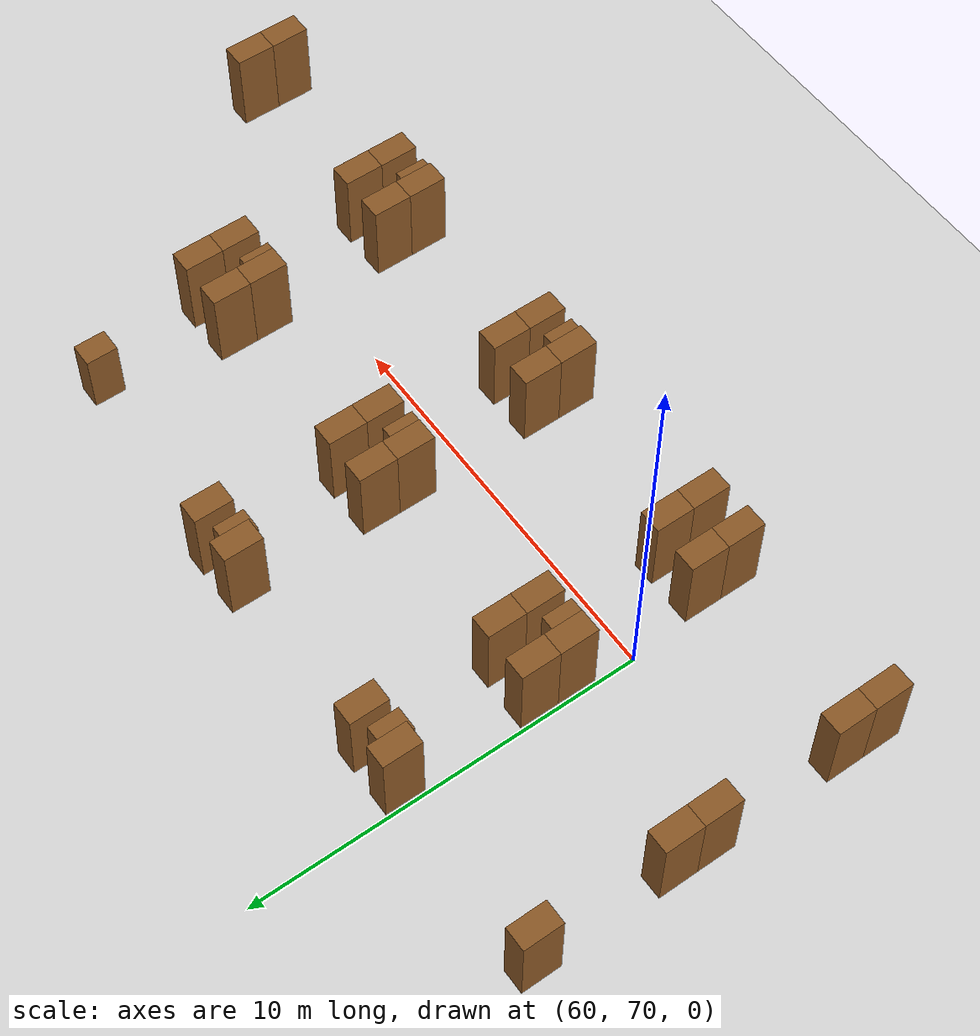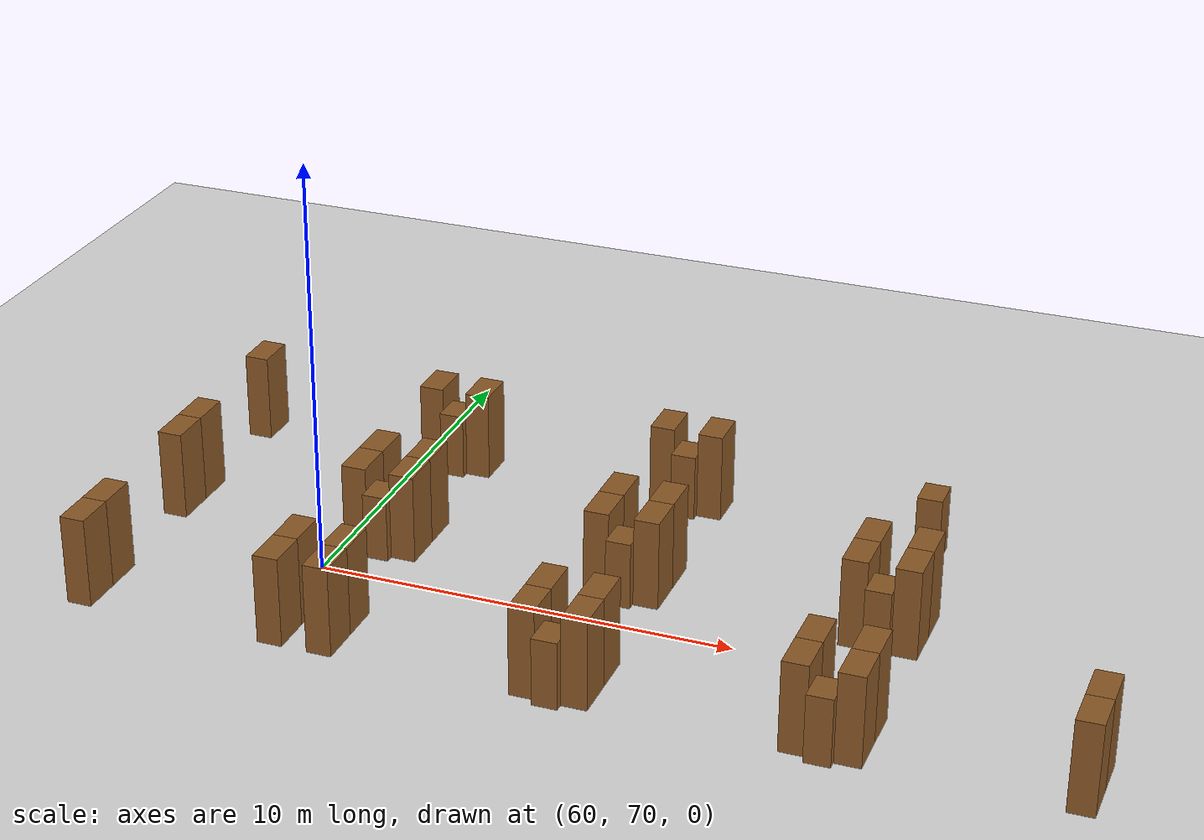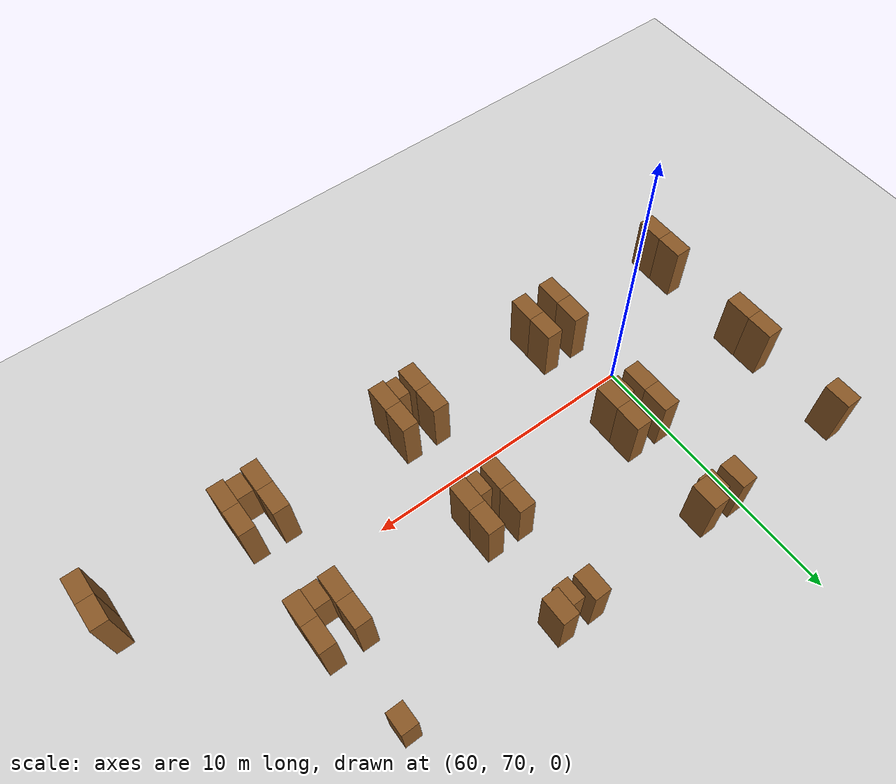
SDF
<sdf version="1.9">
 <world name="realistic_warehouse_150x200m">
  <model name="ground_plane">
   <static>true</static>
   <pose>68.5 102.0 0 0 0 0</pose>
   <link name="ground_link">
    <visual name="ground_visual">
     <geometry><box><size>127.0 194.0 0.01</size></box></geometry>
     <material><ambient>0.85 0.85 0.85 1.0</ambient><diffuse>0.85 0.85 0.85 1.0</diffuse></material>
    </visual>
    <collision name="ground_visual_collision">
     <geometry><box><size>127.0 194.0 0.01</size></box></geometry>
    </collision>
    <collision name="ground_collision">
     <geometry><plane><normal>0 0 1</normal><size>127.0 194.0</size></plane></geometry>
    </collision>
   </link>
  </model>
  <model name="rack_Zone_H_A0_S1_1230">
   <static>true</static>
   <pose>55.6 67.0 1.1 0 0 0</pose>
   <link name="rack_Zone_H_A0_S1_1230_link">
    <visual name="rack_Zone_H_A0_S1_1230_vis">
     <geometry><box><size>0.6 1.0 2.2</size></box></geometry>
     <material><ambient>0.55 0.35 0.15 1.0</ambient><diffuse>0.55 0.35 0.15 1.0</diffuse></material>
    </visual>
    <collision name="rack_Zone_H_A0_S1_1230_vis_collision">
     <geometry><box><size>0.6 1.0 2.2</size></box></geometry>
    </collision>
   </link>
  </model>
  <model name="rack_Zone_H_A0_S1_1231">
   <static>true</static>
   <pose>55.6 68.0 1.1 0 0 0</pose>
   <link name="rack_Zone_H_A0_S1_1231_link">
    <visual name="rack_Zone_H_A0_S1_1231_vis">
     <geometry><box><size>0.6 1.0 2.2</size></box></geometry>
     <material><ambient>0.55 0.35 0.15 1.0</ambient><diffuse>0.55 0.35 0.15 1.0</diffuse></material>
    </visual>
    <collision name="rack_Zone_H_A0_S1_1231_vis_collision">
     <geometry><box><size>0.6 1.0 2.2</size></box></geometry>
    </collision>
   </link>
  </model>
  <model name="rack_Zone_H_A0_S2_1235">
   <static>true</static>
   <pose>55.6 71.5 1.1 0 0 0</pose>
   <link name="rack_Zone_H_A0_S2_1235_link">
    <visual name="rack_Zone_H_A0_S2_1235_vis">
     <geometry><box><size>0.6 1.0 2.2</size></box></geometry>
     <material><ambient>0.55 0.35 0.15 1.0</ambient><diffuse>0.55 0.35 0.15 1.0</diffuse></material>
    </visual>
    <collision name="rack_Zone_H_A0_S2_1235_vis_collision">
     <geometry><box><size>0.6 1.0 2.2</size></box></geometry>
    </collision>
   </link>
  </model>
  <model name="rack_Zone_H_A0_S2_1236">
   <static>true</static>
   <pose>55.6 72.5 1.1 0 0 0</pose>
   <link name="rack_Zone_H_A0_S2_1236_link">
    <visual name="rack_Zone_H_A0_S2_1236_vis">
     <geometry><box><size>0.6 1.0 2.2</size></box></geometry>
     <material><ambient>0.55 0.35 0.15 1.0</ambient><diffuse>0.55 0.35 0.15 1.0</diffuse></material>
    </visual>
    <collision name="rack_Zone_H_A0_S2_1236_vis_collision">
     <geometry><box><size>0.6 1.0 2.2</size></box></geometry>
    </collision>
   </link>
  </model>
  <model name="rack_Zone_H_A0_S3_1240">
   <static>true</static>
   <pose>55.6 76.0 1.1 0 0 0</pose>
   <link name="rack_Zone_H_A0_S3_1240_link">
    <visual name="rack_Zone_H_A0_S3_1240_vis">
     <geometry><box><size>0.6 1.0 2.2</size></box></geometry>
     <material><ambient>0.55 0.35 0.15 1.0</ambient><diffuse>0.55 0.35 0.15 1.0</diffuse></material>
    </visual>
    <collision name="rack_Zone_H_A0_S3_1240_vis_collision">
     <geometry><box><size>0.6 1.0 2.2</size></box></geometry>
    </collision>
   </link>
  </model>
  <model name="rack_Zone_H_A1_S1_1272">
   <static>true</static>
   <pose>60.4 67.0 1.1 0 0 0</pose>
   <link name="rack_Zone_H_A1_S1_1272_link">
    <visual name="rack_Zone_H_A1_S1_1272_vis">
     <geometry><box><size>0.6 1.0 2.2</size></box></geometry>
     <material><ambient>0.55 0.35 0.15 1.0</ambient><diffuse>0.55 0.35 0.15 1.0</diffuse></material>
    </visual>
    <collision name="rack_Zone_H_A1_S1_1272_vis_collision">
     <geometry><box><size>0.6 1.0 2.2</size></box></geometry>
    </collision>
   </link>
  </model>
  <model name="rack_Zone_H_A1_S1_1273">
   <static>true</static>
   <pose>60.4 68.0 1.1 0 0 0</pose>
   <link name="rack_Zone_H_A1_S1_1273_link">
    <visual name="rack_Zone_H_A1_S1_1273_vis">
     <geometry><box><size>0.6 1.0 2.2</size></box></geometry>
     <material><ambient>0.55 0.35 0.15 1.0</ambient><diffuse>0.55 0.35 0.15 1.0</diffuse></material>
    </visual>
    <collision name="rack_Zone_H_A1_S1_1273_vis_collision">
     <geometry><box><size>0.6 1.0 2.2</size></box></geometry>
    </collision>
   </link>
  </model>
  <model name="rack_Zone_H_A1_S1_1274">
   <static>true</static>
   <pose>61.6 67.0 1.1 0 0 0</pose>
   <link name="rack_Zone_H_A1_S1_1274_link">
    <visual name="rack_Zone_H_A1_S1_1274_vis">
     <geometry><box><size>0.6 1.0 2.2</size></box></geometry>
     <material><ambient>0.55 0.35 0.15 1.0</ambient><diffuse>0.55 0.35 0.15 1.0</diffuse></material>
    </visual>
    <collision name="rack_Zone_H_A1_S1_1274_vis_collision">
     <geometry><box><size>0.6 1.0 2.2</size></box></geometry>
    </collision>
   </link>
  </model>
  <model name="rack_Zone_H_A1_S1_1275">
   <static>true</static>
   <pose>61.6 68.0 1.1 0 0 0</pose>
   <link name="rack_Zone_H_A1_S1_1275_link">
    <visual name="rack_Zone_H_A1_S1_1275_vis">
     <geometry><box><size>0.6 1.0 2.2</size></box></geometry>
     <material><ambient>0.55 0.35 0.15 1.0</ambient><diffuse>0.55 0.35 0.15 1.0</diffuse></material>
    </visual>
    <collision name="rack_Zone_H_A1_S1_1275_vis_collision">
     <geometry><box><size>0.6 1.0 2.2</size></box></geometry>
    </collision>
   </link>
  </model>
  <model name="rack_Zone_H_A1_S2_1277">
   <static>true</static>
   <pose>60.4 71.5 1.1 0 0 0</pose>
   <link name="rack_Zone_H_A1_S2_1277_link">
    <visual name="rack_Zone_H_A1_S2_1277_vis">
     <geometry><box><size>0.6 1.0 2.2</size></box></geometry>
     <material><ambient>0.55 0.35 0.15 1.0</ambient><diffuse>0.55 0.35 0.15 1.0</diffuse></material>
    </visual>
    <collision name="rack_Zone_H_A1_S2_1277_vis_collision">
     <geometry><box><size>0.6 1.0 2.2</size></box></geometry>
    </collision>
   </link>
  </model>
  <model name="rack_Zone_H_A1_S2_1278">
   <static>true</static>
   <pose>60.4 72.5 1.1 0 0 0</pose>
   <link name="rack_Zone_H_A1_S2_1278_link">
    <visual name="rack_Zone_H_A1_S2_1278_vis">
     <geometry><box><size>0.6 1.0 2.2</size></box></geometry>
     <material><ambient>0.55 0.35 0.15 1.0</ambient><diffuse>0.55 0.35 0.15 1.0</diffuse></material>
    </visual>
    <collision name="rack_Zone_H_A1_S2_1278_vis_collision">
     <geometry><box><size>0.6 1.0 2.2</size></box></geometry>
    </collision>
   </link>
  </model>
  <model name="rack_Zone_H_A1_S2_1279">
   <static>true</static>
   <pose>61.6 71.5 1.1 0 0 0</pose>
   <link name="rack_Zone_H_A1_S2_1279_link">
    <visual name="rack_Zone_H_A1_S2_1279_vis">
     <geometry><box><size>0.6 1.0 2.2</size></box></geometry>
     <material><ambient>0.55 0.35 0.15 1.0</ambient><diffuse>0.55 0.35 0.15 1.0</diffuse></material>
    </visual>
    <collision name="rack_Zone_H_A1_S2_1279_vis_collision">
     <geometry><box><size>0.6 1.0 2.2</size></box></geometry>
    </collision>
   </link>
  </model>
  <model name="rack_Zone_H_A1_S2_1280">
   <static>true</static>
   <pose>61.6 72.5 1.1 0 0 0</pose>
   <link name="rack_Zone_H_A1_S2_1280_link">
    <visual name="rack_Zone_H_A1_S2_1280_vis">
     <geometry><box><size>0.6 1.0 2.2</size></box></geometry>
     <material><ambient>0.55 0.35 0.15 1.0</ambient><diffuse>0.55 0.35 0.15 1.0</diffuse></material>
    </visual>
    <collision name="rack_Zone_H_A1_S2_1280_vis_collision">
     <geometry><box><size>0.6 1.0 2.2</size></box></geometry>
    </collision>
   </link>
  </model>
  <model name="rack_Zone_H_A1_S2_1281">
   <static>true</static>
   <pose>61.0 71.2 0.8250000000000001 0 0 0</pose>
   <link name="rack_Zone_H_A1_S2_1281_link">
    <visual name="rack_Zone_H_A1_S2_1281_vis">
     <geometry><box><size>0.6 0.8 1.6500000000000001</size></box></geometry>
     <material><ambient>0.55 0.35 0.15 1.0</ambient><diffuse>0.55 0.35 0.15 1.0</diffuse></material>
    </visual>
    <collision name="rack_Zone_H_A1_S2_1281_vis_collision">
     <geometry><box><size>0.6 0.8 1.6500000000000001</size></box></geometry>
    </collision>
   </link>
  </model>
  <model name="rack_Zone_H_A1_S3_1282">
   <static>true</static>
   <pose>60.4 76.0 1.1 0 0 0</pose>
   <link name="rack_Zone_H_A1_S3_1282_link">
    <visual name="rack_Zone_H_A1_S3_1282_vis">
     <geometry><box><size>0.6 1.0 2.2</size></box></geometry>
     <material><ambient>0.55 0.35 0.15 1.0</ambient><diffuse>0.55 0.35 0.15 1.0</diffuse></material>
    </visual>
    <collision name="rack_Zone_H_A1_S3_1282_vis_collision">
     <geometry><box><size>0.6 1.0 2.2</size></box></geometry>
    </collision>
   </link>
  </model>
  <model name="rack_Zone_H_A1_S3_1284">
   <static>true</static>
   <pose>61.6 76.0 1.1 0 0 0</pose>
   <link name="rack_Zone_H_A1_S3_1284_link">
    <visual name="rack_Zone_H_A1_S3_1284_vis">
     <geometry><box><size>0.6 1.0 2.2</size></box></geometry>
     <material><ambient>0.55 0.35 0.15 1.0</ambient><diffuse>0.55 0.35 0.15 1.0</diffuse></material>
    </visual>
    <collision name="rack_Zone_H_A1_S3_1284_vis_collision">
     <geometry><box><size>0.6 1.0 2.2</size></box></geometry>
    </collision>
   </link>
  </model>
  <model name="rack_Zone_H_A1_S3_1286">
   <static>true</static>
   <pose>61.0 75.7 0.8250000000000001 0 0 0</pose>
   <link name="rack_Zone_H_A1_S3_1286_link">
    <visual name="rack_Zone_H_A1_S3_1286_vis">
     <geometry><box><size>0.6 0.8 1.6500000000000001</size></box></geometry>
     <material><ambient>0.55 0.35 0.15 1.0</ambient><diffuse>0.55 0.35 0.15 1.0</diffuse></material>
    </visual>
    <collision name="rack_Zone_H_A1_S3_1286_vis_collision">
     <geometry><box><size>0.6 0.8 1.6500000000000001</size></box></geometry>
    </collision>
   </link>
  </model>
  <model name="rack_Zone_H_A2_S1_1316">
   <static>true</static>
   <pose>66.4 67.0 1.1 0 0 0</pose>
   <link name="rack_Zone_H_A2_S1_1316_link">
    <visual name="rack_Zone_H_A2_S1_1316_vis">
     <geometry><box><size>0.6 1.0 2.2</size></box></geometry>
     <material><ambient>0.55 0.35 0.15 1.0</ambient><diffuse>0.55 0.35 0.15 1.0</diffuse></material>
    </visual>
    <collision name="rack_Zone_H_A2_S1_1316_vis_collision">
     <geometry><box><size>0.6 1.0 2.2</size></box></geometry>
    </collision>
   </link>
  </model>
  <model name="rack_Zone_H_A2_S1_1317">
   <static>true</static>
   <pose>66.4 68.0 1.1 0 0 0</pose>
   <link name="rack_Zone_H_A2_S1_1317_link">
    <visual name="rack_Zone_H_A2_S1_1317_vis">
     <geometry><box><size>0.6 1.0 2.2</size></box></geometry>
     <material><ambient>0.55 0.35 0.15 1.0</ambient><diffuse>0.55 0.35 0.15 1.0</diffuse></material>
    </visual>
    <collision name="rack_Zone_H_A2_S1_1317_vis_collision">
     <geometry><box><size>0.6 1.0 2.2</size></box></geometry>
    </collision>
   </link>
  </model>
  <model name="rack_Zone_H_A2_S1_1318">
   <static>true</static>
   <pose>67.6 67.0 1.1 0 0 0</pose>
   <link name="rack_Zone_H_A2_S1_1318_link">
    <visual name="rack_Zone_H_A2_S1_1318_vis">
     <geometry><box><size>0.6 1.0 2.2</size></box></geometry>
     <material><ambient>0.55 0.35 0.15 1.0</ambient><diffuse>0.55 0.35 0.15 1.0</diffuse></material>
    </visual>
    <collision name="rack_Zone_H_A2_S1_1318_vis_collision">
     <geometry><box><size>0.6 1.0 2.2</size></box></geometry>
    </collision>
   </link>
  </model>
  <model name="rack_Zone_H_A2_S1_1319">
   <static>true</static>
   <pose>67.6 68.0 1.1 0 0 0</pose>
   <link name="rack_Zone_H_A2_S1_1319_link">
    <visual name="rack_Zone_H_A2_S1_1319_vis">
     <geometry><box><size>0.6 1.0 2.2</size></box></geometry>
     <material><ambient>0.55 0.35 0.15 1.0</ambient><diffuse>0.55 0.35 0.15 1.0</diffuse></material>
    </visual>
    <collision name="rack_Zone_H_A2_S1_1319_vis_collision">
     <geometry><box><size>0.6 1.0 2.2</size></box></geometry>
    </collision>
   </link>
  </model>
  <model name="rack_Zone_H_A2_S1_1320">
   <static>true</static>
   <pose>67.0 66.7 0.8250000000000001 0 0 0</pose>
   <link name="rack_Zone_H_A2_S1_1320_link">
    <visual name="rack_Zone_H_A2_S1_1320_vis">
     <geometry><box><size>0.6 0.8 1.6500000000000001</size></box></geometry>
     <material><ambient>0.55 0.35 0.15 1.0</ambient><diffuse>0.55 0.35 0.15 1.0</diffuse></material>
    </visual>
    <collision name="rack_Zone_H_A2_S1_1320_vis_collision">
     <geometry><box><size>0.6 0.8 1.6500000000000001</size></box></geometry>
    </collision>
   </link>
  </model>
  <model name="rack_Zone_H_A2_S2_1321">
   <static>true</static>
   <pose>66.4 71.5 1.1 0 0 0</pose>
   <link name="rack_Zone_H_A2_S2_1321_link">
    <visual name="rack_Zone_H_A2_S2_1321_vis">
     <geometry><box><size>0.6 1.0 2.2</size></box></geometry>
     <material><ambient>0.55 0.35 0.15 1.0</ambient><diffuse>0.55 0.35 0.15 1.0</diffuse></material>
    </visual>
    <collision name="rack_Zone_H_A2_S2_1321_vis_collision">
     <geometry><box><size>0.6 1.0 2.2</size></box></geometry>
    </collision>
   </link>
  </model>
  <model name="rack_Zone_H_A2_S2_1322">
   <static>true</static>
   <pose>66.4 72.5 1.1 0 0 0</pose>
   <link name="rack_Zone_H_A2_S2_1322_link">
    <visual name="rack_Zone_H_A2_S2_1322_vis">
     <geometry><box><size>0.6 1.0 2.2</size></box></geometry>
     <material><ambient>0.55 0.35 0.15 1.0</ambient><diffuse>0.55 0.35 0.15 1.0</diffuse></material>
    </visual>
    <collision name="rack_Zone_H_A2_S2_1322_vis_collision">
     <geometry><box><size>0.6 1.0 2.2</size></box></geometry>
    </collision>
   </link>
  </model>
  <model name="rack_Zone_H_A2_S2_1323">
   <static>true</static>
   <pose>67.6 71.5 1.1 0 0 0</pose>
   <link name="rack_Zone_H_A2_S2_1323_link">
    <visual name="rack_Zone_H_A2_S2_1323_vis">
     <geometry><box><size>0.6 1.0 2.2</size></box></geometry>
     <material><ambient>0.55 0.35 0.15 1.0</ambient><diffuse>0.55 0.35 0.15 1.0</diffuse></material>
    </visual>
    <collision name="rack_Zone_H_A2_S2_1323_vis_collision">
     <geometry><box><size>0.6 1.0 2.2</size></box></geometry>
    </collision>
   </link>
  </model>
  <model name="rack_Zone_H_A2_S2_1324">
   <static>true</static>
   <pose>67.6 72.5 1.1 0 0 0</pose>
   <link name="rack_Zone_H_A2_S2_1324_link">
    <visual name="rack_Zone_H_A2_S2_1324_vis">
     <geometry><box><size>0.6 1.0 2.2</size></box></geometry>
     <material><ambient>0.55 0.35 0.15 1.0</ambient><diffuse>0.55 0.35 0.15 1.0</diffuse></material>
    </visual>
    <collision name="rack_Zone_H_A2_S2_1324_vis_collision">
     <geometry><box><size>0.6 1.0 2.2</size></box></geometry>
    </collision>
   </link>
  </model>
  <model name="rack_Zone_H_A2_S2_1325">
   <static>true</static>
   <pose>67.0 71.2 0.8250000000000001 0 0 0</pose>
   <link name="rack_Zone_H_A2_S2_1325_link">
    <visual name="rack_Zone_H_A2_S2_1325_vis">
     <geometry><box><size>0.6 0.8 1.6500000000000001</size></box></geometry>
     <material><ambient>0.55 0.35 0.15 1.0</ambient><diffuse>0.55 0.35 0.15 1.0</diffuse></material>
    </visual>
    <collision name="rack_Zone_H_A2_S2_1325_vis_collision">
     <geometry><box><size>0.6 0.8 1.6500000000000001</size></box></geometry>
    </collision>
   </link>
  </model>
  <model name="rack_Zone_H_A2_S3_1326">
   <static>true</static>
   <pose>66.4 76.0 1.1 0 0 0</pose>
   <link name="rack_Zone_H_A2_S3_1326_link">
    <visual name="rack_Zone_H_A2_S3_1326_vis">
     <geometry><box><size>0.6 1.0 2.2</size></box></geometry>
     <material><ambient>0.55 0.35 0.15 1.0</ambient><diffuse>0.55 0.35 0.15 1.0</diffuse></material>
    </visual>
    <collision name="rack_Zone_H_A2_S3_1326_vis_collision">
     <geometry><box><size>0.6 1.0 2.2</size></box></geometry>
    </collision>
   </link>
  </model>
  <model name="rack_Zone_H_A2_S3_1328">
   <static>true</static>
   <pose>67.6 76.0 1.1 0 0 0</pose>
   <link name="rack_Zone_H_A2_S3_1328_link">
    <visual name="rack_Zone_H_A2_S3_1328_vis">
     <geometry><box><size>0.6 1.0 2.2</size></box></geometry>
     <material><ambient>0.55 0.35 0.15 1.0</ambient><diffuse>0.55 0.35 0.15 1.0</diffuse></material>
    </visual>
    <collision name="rack_Zone_H_A2_S3_1328_vis_collision">
     <geometry><box><size>0.6 1.0 2.2</size></box></geometry>
    </collision>
   </link>
  </model>
  <model name="rack_Zone_H_A2_S3_1330">
   <static>true</static>
   <pose>67.0 75.7 0.8250000000000001 0 0 0</pose>
   <link name="rack_Zone_H_A2_S3_1330_link">
    <visual name="rack_Zone_H_A2_S3_1330_vis">
     <geometry><box><size>0.6 0.8 1.6500000000000001</size></box></geometry>
     <material><ambient>0.55 0.35 0.15 1.0</ambient><diffuse>0.55 0.35 0.15 1.0</diffuse></material>
    </visual>
    <collision name="rack_Zone_H_A2_S3_1330_vis_collision">
     <geometry><box><size>0.6 0.8 1.6500000000000001</size></box></geometry>
    </collision>
   </link>
  </model>
  <model name="rack_Zone_H_A3_S1_1360">
   <static>true</static>
   <pose>72.4 67.0 1.1 0 0 0</pose>
   <link name="rack_Zone_H_A3_S1_1360_link">
    <visual name="rack_Zone_H_A3_S1_1360_vis">
     <geometry><box><size>0.6 1.0 2.2</size></box></geometry>
     <material><ambient>0.55 0.35 0.15 1.0</ambient><diffuse>0.55 0.35 0.15 1.0</diffuse></material>
    </visual>
    <collision name="rack_Zone_H_A3_S1_1360_vis_collision">
     <geometry><box><size>0.6 1.0 2.2</size></box></geometry>
    </collision>
   </link>
  </model>
  <model name="rack_Zone_H_A3_S1_1361">
   <static>true</static>
   <pose>72.4 68.0 1.1 0 0 0</pose>
   <link name="rack_Zone_H_A3_S1_1361_link">
    <visual name="rack_Zone_H_A3_S1_1361_vis">
     <geometry><box><size>0.6 1.0 2.2</size></box></geometry>
     <material><ambient>0.55 0.35 0.15 1.0</ambient><diffuse>0.55 0.35 0.15 1.0</diffuse></material>
    </visual>
    <collision name="rack_Zone_H_A3_S1_1361_vis_collision">
     <geometry><box><size>0.6 1.0 2.2</size></box></geometry>
    </collision>
   </link>
  </model>
  <model name="rack_Zone_H_A3_S1_1362">
   <static>true</static>
   <pose>73.6 67.0 1.1 0 0 0</pose>
   <link name="rack_Zone_H_A3_S1_1362_link">
    <visual name="rack_Zone_H_A3_S1_1362_vis">
     <geometry><box><size>0.6 1.0 2.2</size></box></geometry>
     <material><ambient>0.55 0.35 0.15 1.0</ambient><diffuse>0.55 0.35 0.15 1.0</diffuse></material>
    </visual>
    <collision name="rack_Zone_H_A3_S1_1362_vis_collision">
     <geometry><box><size>0.6 1.0 2.2</size></box></geometry>
    </collision>
   </link>
  </model>
  <model name="rack_Zone_H_A3_S1_1363">
   <static>true</static>
   <pose>73.6 68.0 1.1 0 0 0</pose>
   <link name="rack_Zone_H_A3_S1_1363_link">
    <visual name="rack_Zone_H_A3_S1_1363_vis">
     <geometry><box><size>0.6 1.0 2.2</size></box></geometry>
     <material><ambient>0.55 0.35 0.15 1.0</ambient><diffuse>0.55 0.35 0.15 1.0</diffuse></material>
    </visual>
    <collision name="rack_Zone_H_A3_S1_1363_vis_collision">
     <geometry><box><size>0.6 1.0 2.2</size></box></geometry>
    </collision>
   </link>
  </model>
  <model name="rack_Zone_H_A3_S1_1364">
   <static>true</static>
   <pose>73.0 66.7 0.8250000000000001 0 0 0</pose>
   <link name="rack_Zone_H_A3_S1_1364_link">
    <visual name="rack_Zone_H_A3_S1_1364_vis">
     <geometry><box><size>0.6 0.8 1.6500000000000001</size></box></geometry>
     <material><ambient>0.55 0.35 0.15 1.0</ambient><diffuse>0.55 0.35 0.15 1.0</diffuse></material>
    </visual>
    <collision name="rack_Zone_H_A3_S1_1364_vis_collision">
     <geometry><box><size>0.6 0.8 1.6500000000000001</size></box></geometry>
    </collision>
   </link>
  </model>
  <model name="rack_Zone_H_A3_S2_1365">
   <static>true</static>
   <pose>72.4 71.5 1.1 0 0 0</pose>
   <link name="rack_Zone_H_A3_S2_1365_link">
    <visual name="rack_Zone_H_A3_S2_1365_vis">
     <geometry><box><size>0.6 1.0 2.2</size></box></geometry>
     <material><ambient>0.55 0.35 0.15 1.0</ambient><diffuse>0.55 0.35 0.15 1.0</diffuse></material>
    </visual>
    <collision name="rack_Zone_H_A3_S2_1365_vis_collision">
     <geometry><box><size>0.6 1.0 2.2</size></box></geometry>
    </collision>
   </link>
  </model>
  <model name="rack_Zone_H_A3_S2_1366">
   <static>true</static>
   <pose>72.4 72.5 1.1 0 0 0</pose>
   <link name="rack_Zone_H_A3_S2_1366_link">
    <visual name="rack_Zone_H_A3_S2_1366_vis">
     <geometry><box><size>0.6 1.0 2.2</size></box></geometry>
     <material><ambient>0.55 0.35 0.15 1.0</ambient><diffuse>0.55 0.35 0.15 1.0</diffuse></material>
    </visual>
    <collision name="rack_Zone_H_A3_S2_1366_vis_collision">
     <geometry><box><size>0.6 1.0 2.2</size></box></geometry>
    </collision>
   </link>
  </model>
  <model name="rack_Zone_H_A3_S2_1367">
   <static>true</static>
   <pose>73.6 71.5 1.1 0 0 0</pose>
   <link name="rack_Zone_H_A3_S2_1367_link">
    <visual name="rack_Zone_H_A3_S2_1367_vis">
     <geometry><box><size>0.6 1.0 2.2</size></box></geometry>
     <material><ambient>0.55 0.35 0.15 1.0</ambient><diffuse>0.55 0.35 0.15 1.0</diffuse></material>
    </visual>
    <collision name="rack_Zone_H_A3_S2_1367_vis_collision">
     <geometry><box><size>0.6 1.0 2.2</size></box></geometry>
    </collision>
   </link>
  </model>
  <model name="rack_Zone_H_A3_S2_1368">
   <static>true</static>
   <pose>73.6 72.5 1.1 0 0 0</pose>
   <link name="rack_Zone_H_A3_S2_1368_link">
    <visual name="rack_Zone_H_A3_S2_1368_vis">
     <geometry><box><size>0.6 1.0 2.2</size></box></geometry>
     <material><ambient>0.55 0.35 0.15 1.0</ambient><diffuse>0.55 0.35 0.15 1.0</diffuse></material>
    </visual>
    <collision name="rack_Zone_H_A3_S2_1368_vis_collision">
     <geometry><box><size>0.6 1.0 2.2</size></box></geometry>
    </collision>
   </link>
  </model>
  <model name="rack_Zone_H_A3_S2_1369">
   <static>true</static>
   <pose>73.0 71.2 0.8250000000000001 0 0 0</pose>
   <link name="rack_Zone_H_A3_S2_1369_link">
    <visual name="rack_Zone_H_A3_S2_1369_vis">
     <geometry><box><size>0.6 0.8 1.6500000000000001</size></box></geometry>
     <material><ambient>0.55 0.35 0.15 1.0</ambient><diffuse>0.55 0.35 0.15 1.0</diffuse></material>
    </visual>
    <collision name="rack_Zone_H_A3_S2_1369_vis_collision">
     <geometry><box><size>0.6 0.8 1.6500000000000001</size></box></geometry>
    </collision>
   </link>
  </model>
  <model name="rack_Zone_H_A3_S3_1374">
   <static>true</static>
   <pose>73.0 75.7 0.8250000000000001 0 0 0</pose>
   <link name="rack_Zone_H_A3_S3_1374_link">
    <visual name="rack_Zone_H_A3_S3_1374_vis">
     <geometry><box><size>0.6 0.8 1.6500000000000001</size></box></geometry>
     <material><ambient>0.55 0.35 0.15 1.0</ambient><diffuse>0.55 0.35 0.15 1.0</diffuse></material>
    </visual>
    <collision name="rack_Zone_H_A3_S3_1374_vis_collision">
     <geometry><box><size>0.6 0.8 1.6500000000000001</size></box></geometry>
    </collision>
   </link>
  </model>
  <model name="rack_Zone_H_A4_S1_1404">
   <static>true</static>
   <pose>78.4 67.0 1.1 0 0 0</pose>
   <link name="rack_Zone_H_A4_S1_1404_link">
    <visual name="rack_Zone_H_A4_S1_1404_vis">
     <geometry><box><size>0.6 1.0 2.2</size></box></geometry>
     <material><ambient>0.55 0.35 0.15 1.0</ambient><diffuse>0.55 0.35 0.15 1.0</diffuse></material>
    </visual>
    <collision name="rack_Zone_H_A4_S1_1404_vis_collision">
     <geometry><box><size>0.6 1.0 2.2</size></box></geometry>
    </collision>
   </link>
  </model>
  <model name="rack_Zone_H_A4_S1_1405">
   <static>true</static>
   <pose>78.4 68.0 1.1 0 0 0</pose>
   <link name="rack_Zone_H_A4_S1_1405_link">
    <visual name="rack_Zone_H_A4_S1_1405_vis">
     <geometry><box><size>0.6 1.0 2.2</size></box></geometry>
     <material><ambient>0.55 0.35 0.15 1.0</ambient><diffuse>0.55 0.35 0.15 1.0</diffuse></material>
    </visual>
    <collision name="rack_Zone_H_A4_S1_1405_vis_collision">
     <geometry><box><size>0.6 1.0 2.2</size></box></geometry>
    </collision>
   </link>
  </model>
 </world>
</sdf>
